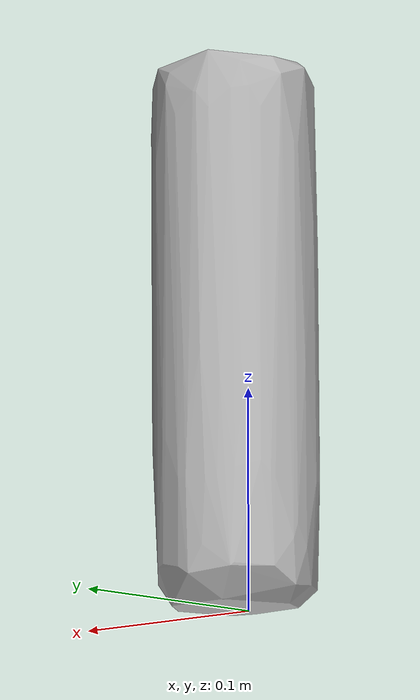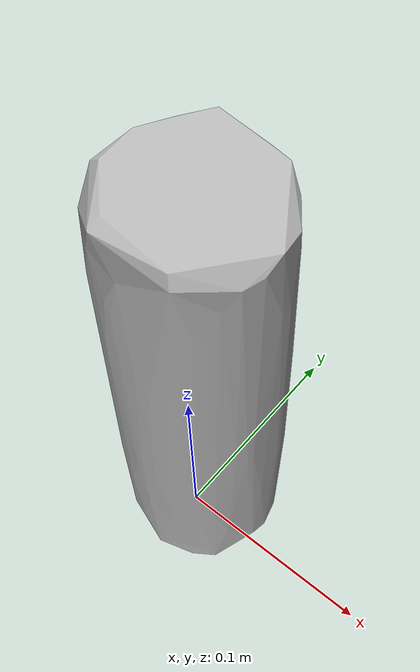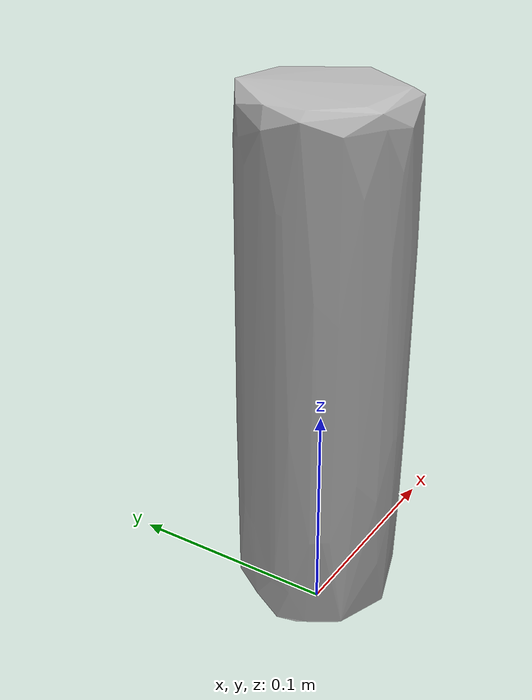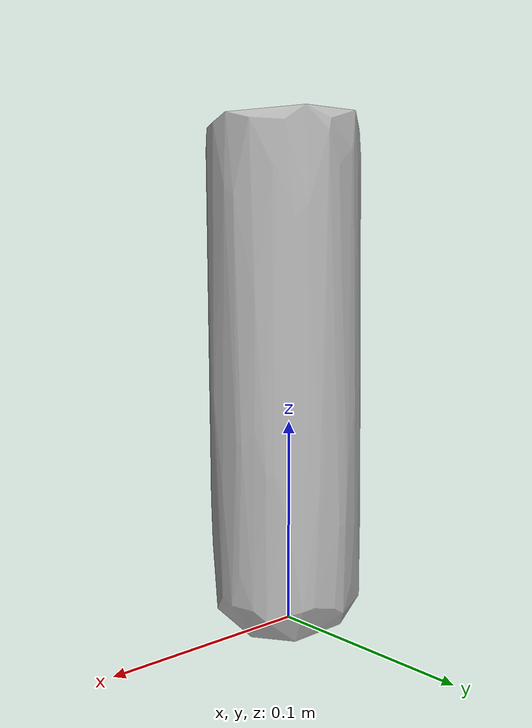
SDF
<?xml version='1.0'?>
<sdf version="1.4">
  <model name="pringles_bbq">
    <static>false</static>
    <link name="link">
      <inertial>
        <pose>0.006068643901657124 0.003737140753256755 0.12110909790689275 3.1323414059450894 -0.014816149853919327 -2.2947366436426253</pose>
        <mass>0.04277460376874941</mass>
        <inertia>
          <ixx>0.0006393645263418732</ixx>
          <ixy>7.855135982261628e-21</ixy>
          <ixz>4.903995868317072e-20</ixz>
          <iyy>0.0006378494875238911</iyy>
          <iyz>2.5815297806559675e-20</iyz>
          <izz>0.00010007258848995261</izz>
        </inertia>
      </inertial>
      <collision name="collision">
        <geometry>
          <mesh>
            <!-- Use a downsampled mesh for collisions -->
            <uri>model:///pringles_bbq/pringles_bbq_250_collision.obj</uri>
	        </mesh>
        </geometry>
        <surface>
      </surface>
      </collision>
      <visual name="visual">
        <geometry>
          <mesh>
            <uri>model:///pringles_bbq/optimized_tsdf_texture_mapped_mesh.obj</uri>
	        </mesh>
        </geometry>
        <material>
          <script>
            <uri>model:///pringles_bbq/pringles_bbq.material</uri>
            <name>pringles_bbq</name>
          </script>
        </material>
      </visual>
    </link>
  </model>
</sdf>
